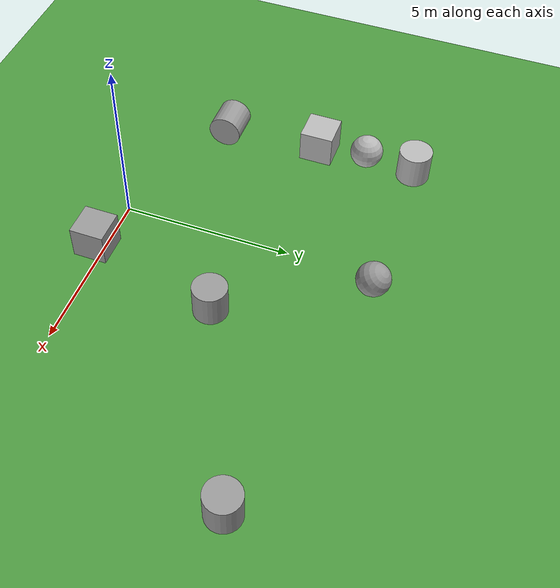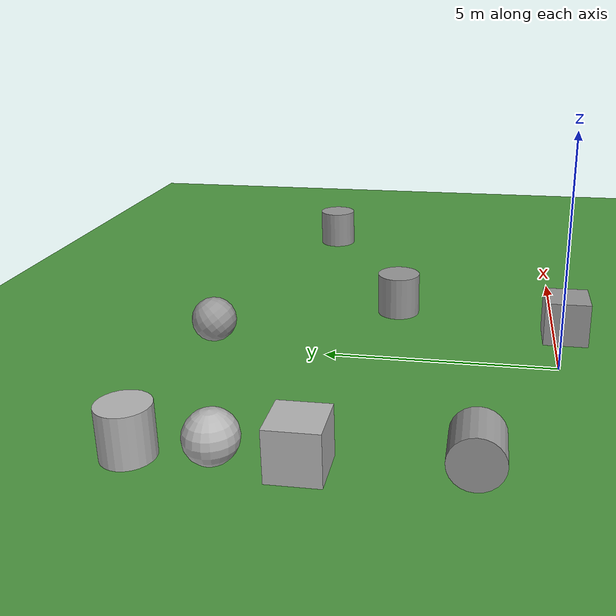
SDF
<sdf version="1.6">
 <world name="default">
  <model name="ground_plane">
   <static>1</static>
   <link name="link">
    <collision name="collision">
     <geometry><plane><normal>0 0 1</normal><size>100 100</size></plane></geometry>
     <surface><friction><ode><mu>100</mu><mu2>50</mu2></ode></friction></surface>
    </collision>
    <visual name="visual">
     <cast_shadows>0</cast_shadows>
     <geometry><plane><normal>0 0 1</normal><size>100 100</size></plane></geometry>
     <material>
      <script>
       <uri>file://media/materials/scripts/gazebo.material</uri>
       <uri>file://media/materials/textures/grass.jpg</uri>
       <name>Grass</name>
      </script>
     </material>
    </visual>
   </link>
  </model>
  <light name="sun" type="directional">
   <pose>0 0 15 0 -0 0</pose>
   <diffuse>1 1 1 1</diffuse>
   <specular>0.1 0.1 0.1 1</specular>
   <attenuation>
    <range>1000</range>
    <constant>0.9</constant>
    <linear>0.01</linear>
    <quadratic>0.001</quadratic>
   </attenuation>
   <direction>-0.5 0.5 -1</direction>
  </light>
  <gravity>0 0 -9.8</gravity>
  <magnetic_field>6e-06 2.3e-05 -4.2e-05</magnetic_field>
  <atmosphere type="adiabatic"/>
  <physics name="default_physics" default="0" type="ode">
   <max_step_size>0.001</max_step_size>
   <real_time_factor>1</real_time_factor>
   <real_time_update_rate>1000</real_time_update_rate>
  </physics>
  <scene><ambient>0.4 0.4 0.4 1</ambient><background>0.7 0.7 0.7 1</background><shadows>1</shadows></scene>
  <spherical_coordinates>
   <surface_model>EARTH_WGS84</surface_model>
   <latitude_deg>0</latitude_deg>
   <longitude_deg>0</longitude_deg>
   <elevation>0</elevation>
   <heading_deg>0</heading_deg>
  </spherical_coordinates>
  <model name="unit_cylinder_0">
   <pose>-4.13202 1.61731 0.5 -1.5708 1.57079 -1.5708</pose>
   <static>1</static>
   <link name="link">
    <inertial>
     <mass>1</mass>
     <inertia><ixx>0.145833</ixx><ixy>0</ixy><ixz>0</ixz><iyy>0.145833</iyy><iyz>0</iyz><izz>0.125</izz></inertia>
    </inertial>
    <collision name="collision">
     <geometry><cylinder><radius>0.5</radius><length>1</length></cylinder></geometry>
    </collision>
    <visual name="visual">
     <geometry><cylinder><radius>0.5</radius><length>1</length></cylinder></geometry>
     <material>
      <script><name>Gazebo/Grey</name><uri>file://media/materials/scripts/gazebo.material</uri></script>
     </material>
    </visual>
   </link>
  </model>
  <model name="unit_sphere_0">
   <pose>0.443381 7.64088 0.5 -0.633425 -0.005481 0.004346</pose>
   <static>1</static>
   <link name="link">
    <inertial>
     <mass>1</mass>
     <inertia><ixx>0.1</ixx><ixy>0</ixy><ixz>0</ixz><iyy>0.1</iyy><iyz>0</iyz><izz>0.1</izz></inertia>
    </inertial>
    <collision name="collision"><geometry><sphere><radius>0.5</radius></sphere></geometry></collision>
    <visual name="visual">
     <geometry><sphere><radius>0.5</radius></sphere></geometry>
     <material>
      <script><name>Gazebo/Grey</name><uri>file://media/materials/scripts/gazebo.material</uri></script>
     </material>
    </visual>
   </link>
  </model>
  <model name="unit_box_0">
   <pose>1.67721 -0.220158 0.499995 0 1e-05 0</pose>
   <static>1</static>
   <link name="link">
    <inertial>
     <mass>1</mass>
     <inertia>
      <ixx>0.166667</ixx>
      <ixy>0</ixy>
      <ixz>0</ixz>
      <iyy>0.166667</iyy>
      <iyz>0</iyz>
      <izz>0.166667</izz>
     </inertia>
    </inertial>
    <collision name="collision"><geometry><box><size>1 1 1</size></box></geometry></collision>
    <visual name="visual">
     <geometry><box><size>1 1 1</size></box></geometry>
     <material>
      <script><name>Gazebo/Grey</name><uri>file://media/materials/scripts/gazebo.material</uri></script>
     </material>
    </visual>
   </link>
  </model>
  <model name="textured_shapes">
   <pose>-4.38385 6.03346 0.5 0 -0 0</pose>
   <static>1</static>
   <link name="box">
    <pose>0 -1.5 0 0 -0 0</pose>
    <collision name="collision"><geometry><box><size>1 1 1</size></box></geometry></collision>
    <visual name="visual">
     <geometry><box><size>1 1 1</size></box></geometry>
     <material>
      <script>
       <uri>model://textured_shapes/materials/scripts</uri>
       <uri>model://textured_shapes/materials/textures</uri>
       <name>TexturedShape/Squares</name>
      </script>
     </material>
    </visual>
    <inertial>
     <inertia><ixx>1</ixx><ixy>0</ixy><ixz>0</ixz><iyy>1</iyy><iyz>0</iyz><izz>1</izz></inertia>
     <mass>1</mass>
    </inertial>
   </link>
   <link name="sphere">
    <collision name="collision"><geometry><sphere><radius>0.5</radius></sphere></geometry></collision>
    <visual name="visual">
     <geometry><sphere><radius>0.5</radius></sphere></geometry>
     <material>
      <script>
       <uri>model://textured_shapes/materials/scripts</uri>
       <uri>model://textured_shapes/materials/textures</uri>
       <name>TexturedShape/Squares</name>
      </script>
     </material>
    </visual>
    <inertial>
     <inertia><ixx>1</ixx><ixy>0</ixy><ixz>0</ixz><iyy>1</iyy><iyz>0</iyz><izz>1</izz></inertia>
     <mass>1</mass>
    </inertial>
   </link>
   <link name="cylinder">
    <pose>0 1.5 0 0 -0 0</pose>
    <collision name="collision">
     <geometry><cylinder><radius>0.5</radius><length>1</length></cylinder></geometry>
    </collision>
    <visual name="visual">
     <geometry><cylinder><radius>0.5</radius><length>1</length></cylinder></geometry>
     <material>
      <script>
       <uri>model://textured_shapes/materials/scripts</uri>
       <uri>model://textured_shapes/materials/textures</uri>
       <name>TexturedShape/Squares</name>
      </script>
     </material>
    </visual>
    <inertial>
     <inertia><ixx>1</ixx><ixy>0</ixy><ixz>0</ixz><iyy>1</iyy><iyz>0</iyz><izz>1</izz></inertia>
     <mass>1</mass>
    </inertial>
   </link>
  </model>
  <model name="unit_cylinder_1">
   <pose>2.66803 3.70939 0.499996 4e-06 2e-06 -0</pose>
   <static>1</static>
   <link name="link">
    <inertial>
     <mass>1</mass>
     <inertia><ixx>0.145833</ixx><ixy>0</ixy><ixz>0</ixz><iyy>0.145833</iyy><iyz>0</iyz><izz>0.125</izz></inertia>
    </inertial>
    <collision name="collision">
     <geometry><cylinder><radius>0.5</radius><length>1</length></cylinder></geometry>
    </collision>
    <visual name="visual">
     <geometry><cylinder><radius>0.5</radius><length>1</length></cylinder></geometry>
     <material>
      <script><name>Gazebo/Grey</name><uri>file://media/materials/scripts/gazebo.material</uri></script>
     </material>
    </visual>
   </link>
  </model>
  <model name="unit_cylinder_2">
   <pose>8.12575 6.26664 0.499997 3e-06 4e-06 -0</pose>
   <static>1</static>
   <link name="link">
    <inertial>
     <mass>1</mass>
     <inertia><ixx>0.145833</ixx><ixy>0</ixy><ixz>0</ixz><iyy>0.145833</iyy><iyz>0</iyz><izz>0.125</izz></inertia>
    </inertial>
    <collision name="collision">
     <geometry><cylinder><radius>0.5</radius><length>1</length></cylinder></geometry>
    </collision>
    <visual name="visual">
     <geometry><cylinder><radius>0.5</radius><length>1</length></cylinder></geometry>
     <material>
      <script><name>Gazebo/Grey</name><uri>file://media/materials/scripts/gazebo.material</uri></script>
     </material>
    </visual>
   </link>
  </model>
 </world>
</sdf>
